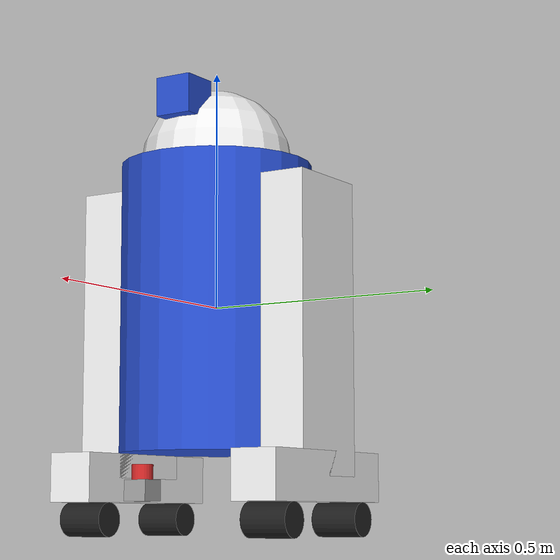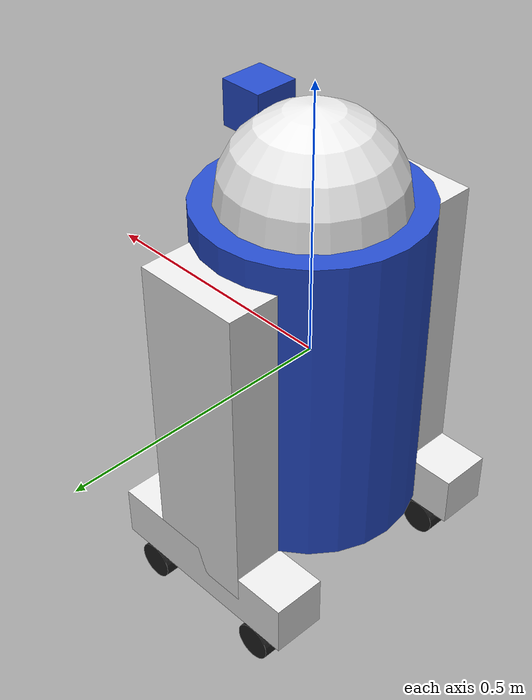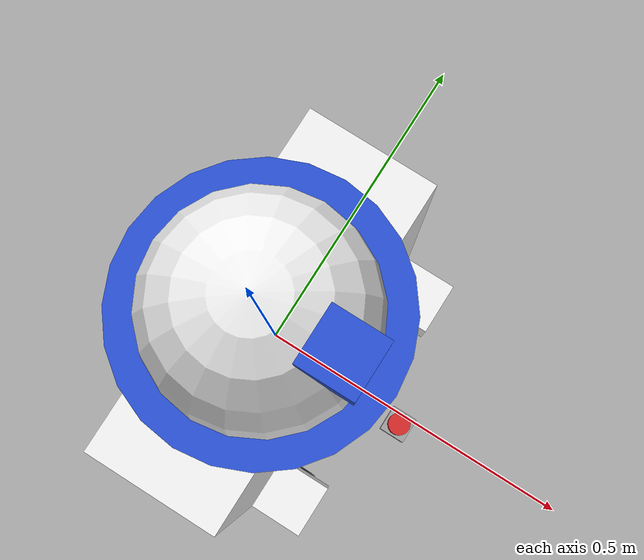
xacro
<?xml version="1.0"?>
<robot name="r2d2" xmlns:xacro="http://www.ros.org/wiki/xacro">

  <!-- Tags needed for rviz to color model -->
  <xacro:include filename="$(find pybullet_ros)/common/test/urdf/r2d2_robot/materials.urdf.xacro" />

  <!-- hokuyo laser scanner -->
  <xacro:include filename="$(find pybullet_ros)/common/test/urdf/laser_scanner/laser_scanner.urdf.xacro" />
  <xacro:property name="laser_name" value="1" />
  <xacro:hokuyo name="${laser_name}" />

  <xacro:property name="M_PI" value="3.141592653589793" />

  <link name="base_link">
    <visual>
      <geometry>
        <cylinder length="0.6" radius="0.2"/>
      </geometry>
      <material name="blue"/>
    </visual>
    <collision>
      <geometry>
        <cylinder length="0.6" radius="0.17"/>
      </geometry>
    </collision>
    <inertial>
      <mass value="10"/>
      <inertia ixx="1.0" ixy="0.0" ixz="0.0" iyy="1.0" iyz="0.0" izz="1.0"/>
    </inertial>
  </link>

  <joint name="base_link_to_laser_body" type="fixed">
    <parent link="base_link"/>
    <child link="laser_body_${laser_name}"/>
    <origin xyz="0.25 0.0 -0.4" rpy="0 0 0" />
  </joint>

  <link name="right_leg">
    <visual>
      <geometry>
        <box size="0.6 0.1 0.2"/>
      </geometry>
      <origin rpy="0 ${M_PI/2.0} 0" xyz="0 0 -0.3"/>
      <material name="white"/>
    </visual>
    <collision>
      <geometry>
        <box size="0.6 0.1 0.2"/>
      </geometry>
      <origin rpy="0 ${M_PI/2.0} 0" xyz="0 0 -0.3"/>
    </collision>
    <inertial>
      <mass value="10"/>
      <origin rpy="0 ${M_PI/2.0} 0" xyz="0 0 -0.3"/>
      <inertia ixx="1.0" ixy="0.0" ixz="0.0" iyy="1.0" iyz="0.0" izz="1.0"/>
    </inertial>
  </link>

  <joint name="base_to_right_leg" type="fixed">
    <parent link="base_link"/>
    <child link="right_leg"/>
    <origin xyz="0 -0.22 0.25"/>
  </joint>

  <link name="right_base">
    <visual>
      <geometry>
        <box size="0.4 0.1 0.1"/>
      </geometry>
      <material name="white"/>
    </visual>
    <collision>
      <geometry>
        <box size="0.4 0.1 0.1"/>
      </geometry>
    </collision>
    <inertial>
      <mass value="10"/>
      <inertia ixx="1.0" ixy="0.0" ixz="0.0" iyy="1.0" iyz="0.0" izz="1.0"/>
    </inertial>
  </link>

  <joint name="right_base_joint" type="fixed">
    <parent link="right_leg"/>
    <child link="right_base"/>
    <origin xyz="0 0 -0.6"/>
  </joint>

  <link name="right_front_wheel">
    <visual>
      <origin rpy="${M_PI/2.0} 0 0" xyz="0 0 0"/>
      <geometry>
        <cylinder length="0.1" radius="0.035"/>
      </geometry>
      <material name="black"/>
    </visual>
    <collision>
      <origin rpy="${M_PI/2.0} 0 0" xyz="0 0 0"/>
      <geometry>
        <cylinder length="0.1" radius="0.035"/>
      </geometry>
      <material name="black"/>
    </collision>
    <inertial>
      <mass value="1"/>
      <inertia ixx="1.0" ixy="0.0" ixz="0.0" iyy="1.0" iyz="0.0" izz="1.0"/>
    </inertial>
  </link>

  <joint name="right_front_wheel_joint" type="continuous">
    <axis xyz="0 0 1"/>
    <parent link="right_base"/>
    <child link="right_front_wheel"/>
    <origin rpy="0 0 0" xyz="0.133333333333 0 -0.085"/>
    <limit effort="100" velocity="100"/>
    <joint_properties damping="0.0" friction="0.0"/>
  </joint>

  <link name="right_back_wheel">
    <visual>
      <origin rpy="${M_PI/2.0} 0 0" xyz="0 0 0"/>
      <geometry>
        <cylinder length="0.1" radius="0.035"/>
      </geometry>
      <material name="black"/>
    </visual>
    <collision>
      <origin rpy="${M_PI/2.0} 0 0" xyz="0 0 0"/>
      <geometry>
        <cylinder length="0.1" radius="0.035"/>
      </geometry>
      <material name="black"/>
    </collision>
    <inertial>
      <mass value="1"/>
      <inertia ixx="1.0" ixy="0.0" ixz="0.0" iyy="1.0" iyz="0.0" izz="1.0"/>
    </inertial>
  </link>

  <joint name="right_back_wheel_joint" type="continuous">
    <axis xyz="0 0 1"/>
    <origin rpy="0 0 0" xyz="-0.133333333333 0 -0.085"/>
    <limit effort="100" velocity="100"/>
    <joint_properties damping="0.0" friction="0.0"/>
    <parent link="right_base"/>
    <child link="right_back_wheel"/>
  </joint>

  <link name="left_leg">
    <visual>
      <geometry>
        <box size="0.6 0.1 0.2"/>
      </geometry>
      <origin rpy="0 ${M_PI/2.0} 0" xyz="0 0 -0.3"/>
      <material name="white"/>
    </visual>
    <collision>
      <geometry>
        <box size="0.6 0.1 0.2"/>
      </geometry>
      <origin rpy="0 ${M_PI/2.0} 0" xyz="0 0 -0.3"/>
    </collision>
    <inertial>
      <mass value="10"/>
      <inertia ixx="1.0" ixy="0.0" ixz="0.0" iyy="1.0" iyz="0.0" izz="1.0"/>
      <origin rpy="0 ${M_PI/2.0} 0" xyz="0 0 -0.3"/>
    </inertial>
  </link>

  <joint name="base_to_left_leg" type="fixed">
    <parent link="base_link"/>
    <child link="left_leg"/>
    <origin xyz="0 0.22 0.25"/>
  </joint>

  <link name="left_base">
    <visual>
      <geometry>
        <box size="0.4 0.1 0.1"/>
      </geometry>
      <material name="white"/>
    </visual>
    <collision>
      <geometry>
        <box size="0.4 0.1 0.1"/>
      </geometry>
    </collision>
    <inertial>
      <mass value="10"/>
      <inertia ixx="1.0" ixy="0.0" ixz="0.0" iyy="1.0" iyz="0.0" izz="1.0"/>
    </inertial>
  </link>

  <joint name="left_base_joint" type="fixed">
    <parent link="left_leg"/>
    <child link="left_base"/>
    <origin xyz="0 0 -0.6"/>
  </joint>

  <link name="left_front_wheel">
    <visual>
      <origin rpy="${M_PI/2.0} 0 0" xyz="0 0 0"/>
      <geometry>
        <cylinder length="0.1" radius="0.035"/>
      </geometry>
      <material name="black"/>
    </visual>
    <collision>
      <origin rpy="${M_PI/2.0} 0 0" xyz="0 0 0"/>
      <geometry>
        <cylinder length="0.1" radius="0.035"/>
      </geometry>
    </collision>
    <inertial>
      <mass value="1"/>
      <inertia ixx="1.0" ixy="0.0" ixz="0.0" iyy="1.0" iyz="0.0" izz="1.0"/>
    </inertial>
  </link>

  <joint name="left_front_wheel_joint" type="continuous">
    <axis xyz="0 0 1"/>
    <parent link="left_base"/>
    <child link="left_front_wheel"/>
    <origin rpy="0 0 0" xyz="0.133333333333 0 -0.085"/>
    <limit effort="100" velocity="100"/>
    <joint_properties damping="0.0" friction="0.0"/>
  </joint>

  <link name="left_back_wheel">
    <visual>
      <origin rpy="${M_PI/2.0} 0 0" xyz="0 0 0"/>
      <geometry>
        <cylinder length="0.1" radius="0.035"/>
      </geometry>
      <material name="black"/>
    </visual>
    <collision>
      <origin rpy="${M_PI/2.0} 0 0" xyz="0 0 0"/>
      <geometry>
        <cylinder length="0.1" radius="0.035"/>
      </geometry>
    </collision>
    <inertial>
      <mass value="1"/>
      <inertia ixx="1.0" ixy="0.0" ixz="0.0" iyy="1.0" iyz="0.0" izz="1.0"/>
    </inertial>
  </link>

  <joint name="left_back_wheel_joint" type="continuous">
    <axis xyz="0 0 1"/>
    <parent link="left_base"/>
    <child link="left_back_wheel"/>
    <origin rpy="0 0 0" xyz="-0.133333333333 0 -0.085"/>
    <limit effort="100" velocity="100"/>
    <joint_properties damping="0.0" friction="0.0"/>
  </joint>

  <link name="head">
    <visual>
      <geometry>
        <sphere radius="0.16"/>
      </geometry>
      <material name="white"/>
    </visual>
    <collision>
      <geometry>
        <sphere radius="0.16"/>
      </geometry>
    </collision>
    <inertial>
      <mass value="10"/>
      <inertia ixx="1.0" ixy="0.0" ixz="0.0" iyy="1.0" iyz="0.0" izz="1.0"/>
    </inertial>
  </link>

  <joint name="head_swivel" type="revolute">
    <parent link="base_link"/>
    <child link="head"/>
    <axis xyz="0 0 1"/>
    <origin xyz="0 0 0.3"/>
    <limit effort="1500.0" lower="-${M_PI/2.0}" upper="${M_PI/2.0}" velocity="100.0"/>
  </joint>

  <link name="box">
    <visual>
      <geometry>
        <box size=".08 .08 .08"/>
      </geometry>
      <material name="blue"/>
    </visual>
    <collision>
      <geometry>
        <box size=".08 .08 .08"/>
      </geometry>
    </collision>
    <inertial>
      <mass value="1"/>
      <inertia ixx="1.0" ixy="0.0" ixz="0.0" iyy="1.0" iyz="0.0" izz="1.0"/>
    </inertial>
  </link>

  <joint name="tobox" type="fixed">
    <parent link="head"/>
    <child link="box"/>
    <origin xyz="0.1214 0 0.1214"/>
  </joint>

</robot>

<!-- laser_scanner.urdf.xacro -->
<!-- simplified laser scanner, 1 box + 1 cylinder -->
<robot name="laser_scanner" xmlns:xacro="http://www.ros.org/wiki/xacro" >

  <!-- Hokuyo URG-04LX-UG01 dimensions -->
  <xacro:property name="laser_height" value="0.041" />
  <xacro:property name="laser_width" value="0.05" />
  <xacro:property name="diameter" value="0.042" />
  <xacro:property name="cylinder_height" value="0.029" />
  <xacro:property name="measurement_window_height" value="0.0205" />

  <xacro:macro name="hokuyo" params="name">

    <link name="laser_body_${name}">
        <visual>
        <origin rpy="0 0 0" xyz="0 0 ${laser_height/2.0}"/>
        <geometry>
            <box size="${laser_width} ${laser_width} ${laser_height}"/>
        </geometry>
        <material name="grey"/>
        </visual>
        <collision>
        <origin rpy="0 0 0" xyz="0 0 ${laser_height/2.0}"/>
        <geometry>
            <box size="${laser_width} ${laser_width} ${laser_height}"/>
        </geometry>
        </collision>
        <!-- inertia missing! -->
    </link>

    <link name="laser_${name}">
        <visual>
        <origin rpy="0 0 0" xyz="0 0 ${cylinder_height/2.0 - measurement_window_height}"/>
        <geometry>
            <cylinder radius="${diameter/2.0}" length="${cylinder_height}"/>
        </geometry>
        <material name="red"/>
        </visual>
        <collision>
        <origin rpy="0 0 0" xyz="0 0 ${cylinder_height/2.0 - measurement_window_height}"/>
        <geometry>
            <cylinder radius="${diameter/2.0}" length="${cylinder_height}"/>
        </geometry>
        </collision>
        <!-- inertia missing! -->
    </link>

    <joint name="$laser_body_${name}_to_laser_${name}" type="fixed">
        <origin rpy="0 0 0" xyz="0 0 ${laser_height + measurement_window_height}"/>
        <parent link="laser_body_${name}"/>
        <child link="laser_${name}"/>
    </joint>
  </xacro:macro>

</robot>
